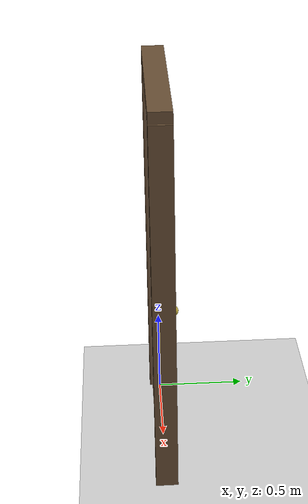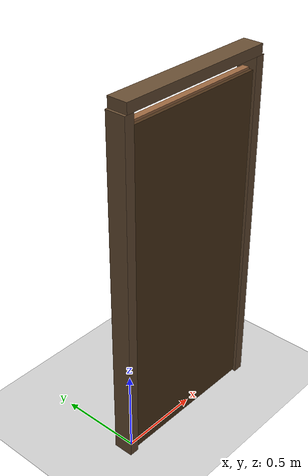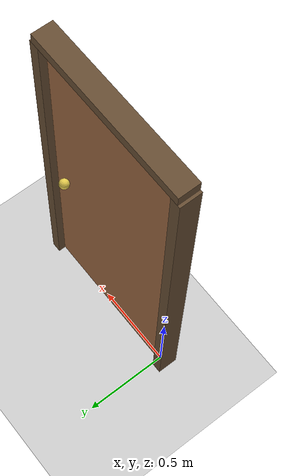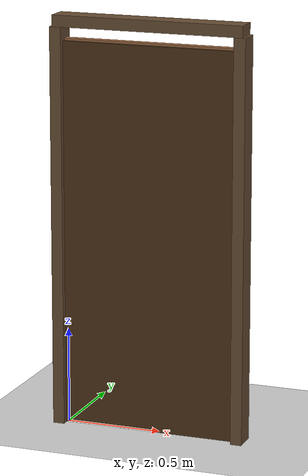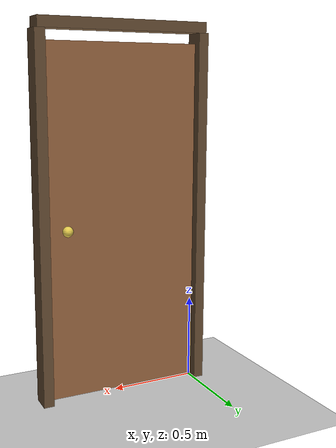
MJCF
<mujoco model="self_closing_door">
  <option timestep="0.002" gravity="0 0 -9.81"/>
  <worldbody>
    <light name="sun" pos="0 -3 5" dir="0 0.5 -1" directional="true"/>
    <geom name="floor" type="plane" size="5 5 0.1" pos="0 0 0" rgba="0.8 0.8 0.8 1"/>
    <body name="frame" pos="0 0 0">
      <geom name="jamb_hinge" type="box" size="0.03 0.06 1.04" pos="-0.035 0 1.04" contype="0" conaffinity="0" rgba="0.4 0.3 0.2 1"/>
      <geom name="jamb_latch" type="box" size="0.03 0.06 1.04" pos="0.935 0 1.04" contype="0" conaffinity="0" rgba="0.4 0.3 0.2 1"/>
      <geom name="header" type="box" size="0.5 0.06 0.03" pos="0.45 0 2.11" contype="0" conaffinity="0" rgba="0.4 0.3 0.2 1"/>
      <geom name="stop_strip" type="box" size="0.45 0.01 1.0" pos="0.45 -0.035 1.01" contype="0" conaffinity="0" rgba="0.3 0.2 0.1 1"/>
    </body>
    <body name="door" pos="0 0 0">
      <joint name="hinge" type="hinge" axis="0 0 1" pos="0 0 0" limited="true" range="0 1.7" stiffness="30" springref="-0.1" damping="15" solreflimit="0.005 1"/>
      <geom name="door_panel" type="box" size="0.45 0.02 1.0" pos="0.45 0 1.02" mass="30" rgba="0.6 0.4 0.25 1"/>
      <geom name="door_knob" type="sphere" size="0.03" pos="0.8 0.05 1.0" mass="0.2" rgba="0.9 0.8 0.3 1"/>
    </body>
  </worldbody>
  <keyframe>
    <key name="start" qpos="1.3" qvel="0"/>
  </keyframe>
</mujoco>
